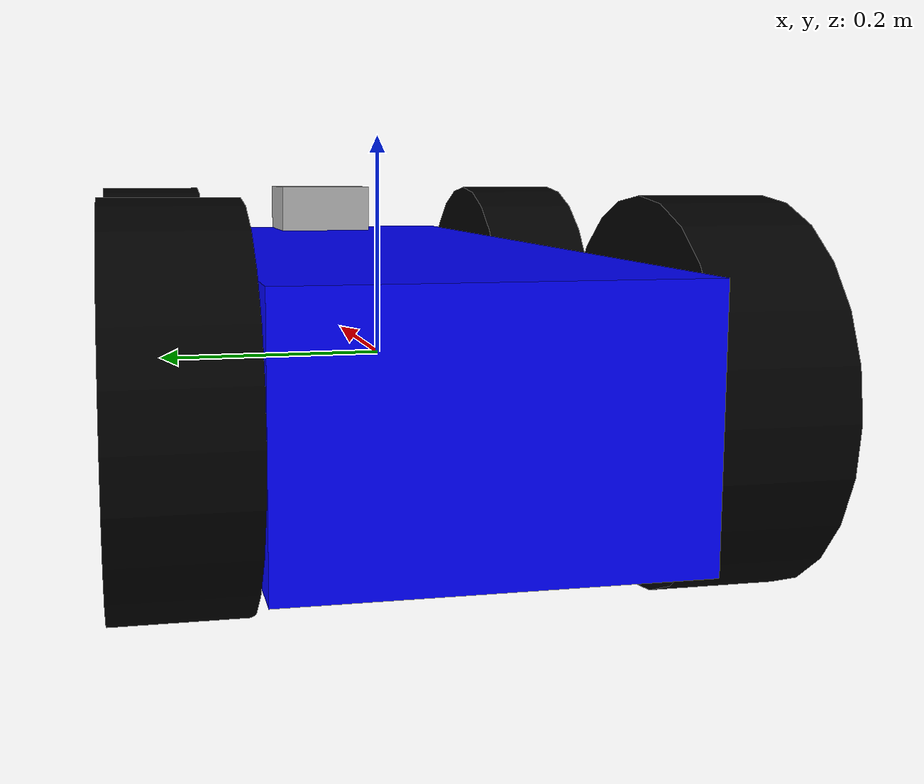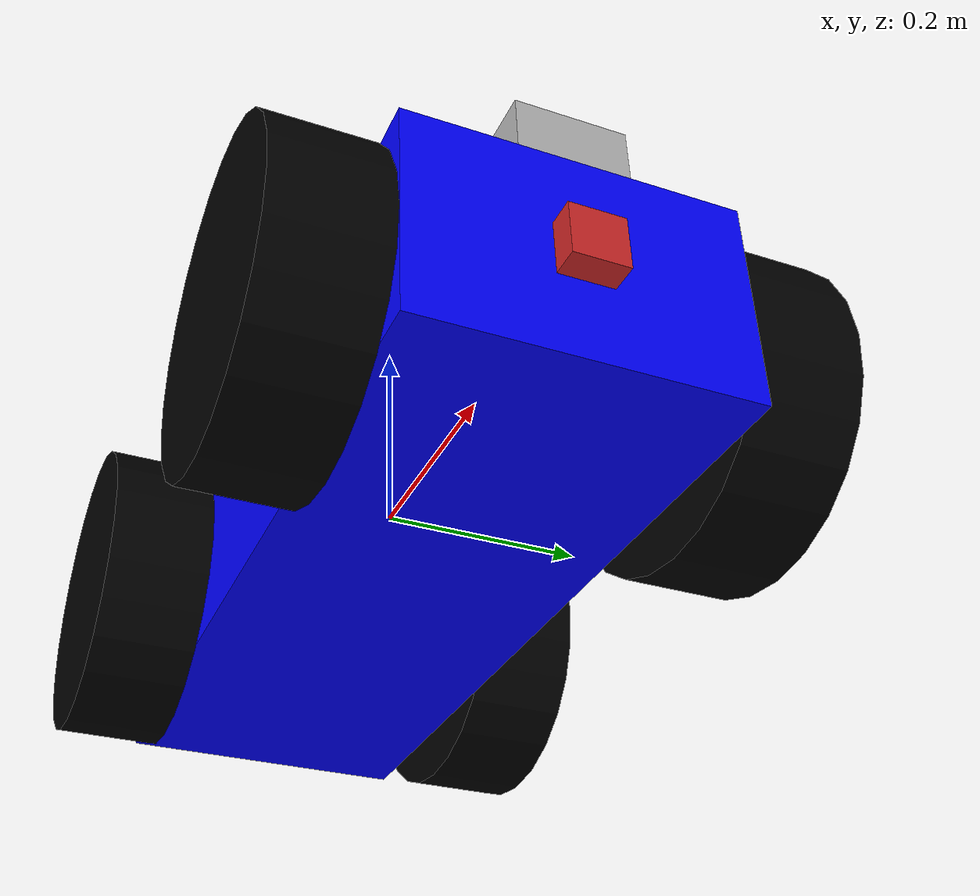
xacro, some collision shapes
<?xml version='1.0'?>

<robot name="my_robot" xmlns:xacro="http://www.ros.org/wiki/xacro">

<xacro:include filename="$(find my_robot)/urdf/my_robot.gazebo" />
<xacro:include filename="$(find my_robot)/urdf/color.gazebo" />
  <material name="blue">
        <color rgba="0 0 1 1"/>
  </material>

  <link name="robot_footprint"></link>

  <joint name="robot_footprint_joint" type="fixed">
    <origin xyz="0 0 0" rpy="0 0 0" />
    <parent link="robot_footprint"/>
    <child link="chassis" />
  </joint>

  <link name='chassis'>
    <pose>0 0 0.1 0 0 0</pose>

    <inertial>
      <mass value="5.0"/>
      <origin xyz="0.0 0 0" rpy=" 0 0 0"/>
      <inertia
          ixx="0.1" ixy="0" ixz="0"
          iyy="0.1" iyz="0"
          izz="0.1"
      />
    </inertial>

    <collision name='collision'>
      <origin xyz="0 0 0" rpy=" 0 0 0"/>
      <geometry>
        <box size="0.8 0.3 .2"/>
      </geometry>
    </collision>

    <visual name='chassis_visual'>
      <origin xyz="0 0 0" rpy=" 0 0 0"/>
      <geometry>
        <box size="0.8 0.3 .2"/>
      </geometry>
      <material name="blue"/>
    </visual>
  </link>

  <link name="left_wheel_front">

	<inertial>
	      <mass value="1.0"/>
	      <origin xyz="0 0 0" rpy=" 1.5707 0 0"/>
      	      <inertia ixx=".1" ixy="0" ixz="0" iyy=".1" iyz="0" izz=".1"/>
    	</inertial>

  	<visual name="left_wheel_front_visual">
		<origin xyz="0 0 0" rpy=" 1.5707 0 0"/>
		<geometry>
			<cylinder length="0.1" radius="0.15"/>
		</geometry>
      		<material name="">
        		<color rgba="0 0 0 1"/>
      		</material>
	</visual>

  	<collision name="left_wheel_front_collision">
		<origin xyz="0 0 0" rpy=" 1.5707 0 0"/>
		<geometry>
			<cylinder length="0.1" radius="0.15"/>
		</geometry>
	</collision>

  </link>

  <link name="right_wheel_front">

	<inertial>
	      <mass value="1.0"/>
	      <origin xyz="0 0 0" rpy=" 1.5707 0 0"/>
      		<inertia ixx="0.1" ixy="0" ixz="0" iyy="0.1" iyz="0" izz="0.1"/>
    	</inertial>
  	<visual name="right_wheel_front_visual">
		<origin xyz="0 0 0" rpy=" 1.5707 0 0"/>
		<geometry>
			<cylinder length="0.1" radius="0.15"/>
		</geometry>
      		<material name="">
        		<color rgba="0 0 0 1"/>
      		</material>
	</visual>
  	<collision name="right_wheel_front_collision">
		<origin xyz="0 0 0" rpy=" 1.5707 0 0"/>
		<geometry>
			<cylinder length="0.1" radius="0.15"/>
		</geometry>
	</collision>
  </link>

  <link name="left_wheel_back">

	<inertial>
	      <mass value="1.0"/>
	      <origin xyz="0 0 0" rpy=" 1.5707 0 0"/>
      	      <inertia ixx=".1" ixy="0" ixz="0" iyy=".1" iyz="0" izz=".1"/>
    	</inertial>

  	<visual name="left_wheel_back_visual">
		<origin xyz="0 0 0" rpy=" 1.5707 0 0"/>
		<geometry>
			<cylinder length="0.1" radius="0.15"/>
		</geometry>
      		<material name="">
        		<color rgba="0 0 0 1"/>
      		</material>
	</visual>

  	<collision name="left_wheel_back_collision">
		<origin xyz="0 0 0" rpy=" 1.5707 0 0"/>
		<geometry>
			<cylinder length="0.1" radius="0.15"/>
		</geometry>
	</collision>

  </link>

  <link name="right_wheel_back">

	<inertial>
	      <mass value="1.0"/>
	      <origin xyz="0 0 0" rpy=" 1.5707 0 0"/>
      		<inertia ixx="0.1" ixy="0" ixz="0" iyy="0.1" iyz="0" izz="0.1"/>
    	</inertial>
  	<visual name="right_wheel_back_visual">
		<origin xyz="0 0 0" rpy=" 1.5707 0 0"/>
		<geometry>
			<cylinder length="0.1" radius="0.15"/>
		</geometry>
      		<material name="">
        		<color rgba="0 0 0 1"/>
      		</material>
	</visual>
  	<collision name="right_wheel_back_collision">
		<origin xyz="0 0 0" rpy=" 1.5707 0 0"/>
		<geometry>
			<cylinder length="0.1" radius="0.15"/>
		</geometry>
	</collision>
  </link>

  <joint type="continuous" name="left_wheel_front_hinge">
    <origin xyz="0.25 0.2 0" rpy="0 0 0"/>
    <child link="left_wheel_front"/>
    <parent link="chassis"/>
    <axis xyz="0 1 0" rpy="0 0 0"/>
    <limit effort="10000" velocity="1000"/>
    <dynamics damping="1.0" friction="1.0"/>
  </joint>

  <joint type="continuous" name="right_wheel_front_hinge">
    <origin xyz="0.25 -0.2 0" rpy="0 0 0"/>
    <child link="right_wheel_front"/>
    <parent link="chassis"/>
    <axis xyz="0 1 0" rpy="0 0 0"/>
    <limit effort="10000" velocity="1000"/>
    <dynamics damping="1.0" friction="1.0"/>
  </joint>

  <joint type="continuous" name="left_wheel_back_hinge">
    <origin xyz="-0.25 0.2 0" rpy="0 0 0"/>
    <child link="left_wheel_back"/>
    <parent link="chassis"/>
    <axis xyz="0 1 0" rpy="0 0 0"/>
    <limit effort="10000" velocity="1000"/>
    <dynamics damping="1.0" friction="1.0"/>
  </joint>

  <joint type="continuous" name="right_wheel_back_hinge">
    <origin xyz="-0.25 -0.2 0" rpy="0 0 0"/>
    <child link="right_wheel_back"/>
    <parent link="chassis"/>
    <axis xyz="0 1 0" rpy="0 0 0"/>
    <limit effort="10000" velocity="1000"/>
    <dynamics damping="1.0" friction="1.0"/>
  </joint>

  <link name="camera">

	<inertial>
	      <mass value="0.1"/>
	      <origin xyz="0 0 0" rpy="0 0 0"/>
		<box_inertia m=".1" x="0.05" y="0.05" z=""/>
      		<inertia ixx="1e-6" ixy="0" ixz="0" iyy="1e-6" iyz="0" izz="1e-6"/>
    	</inertial>
  	<visual name="camera_visual">
		<origin xyz="0 0 0" rpy="0 0 0"/>
		<geometry>
			<box size="0.05 0.05 0.05"/>
		</geometry>
	</visual>
  	<collision name="camera_collision">
		<origin xyz="0 0 0" rpy="0 0 0"/>
		<geometry>
			<box size="0.05 0.05 0.05"/>
		</geometry>
	</collision>
  </link>

  <joint type="fixed" name="camera_joint">
    <origin xyz="0.4 0 0" rpy="0 0 0"/>
    <child link="camera"/>
    <parent link="chassis"/>
    <axis xyz="0 1 0" rpy="0 0 0"/>
  </joint>

  <link name="hokuyo">
	<inertial>
	      <mass value="1e-5"/>
	      <origin xyz="0 0 0" rpy="0 0 0"/>
      		<inertia ixx="1e-6" ixy="0" ixz="0" iyy="1e-6" iyz="0" izz="1e-6"/>
    	</inertial>
  	<visual name="hokuyo_visual">
		<origin xyz="0 0 0" rpy="0 0 0"/>
		<geometry>
			<!--box size=".2 .2 .2"/-->
			<mesh filename="package://my_robot/meshes/hokuyo.dae"/>
		</geometry>
	</visual>
  	<collision name="hokuyo_collision">
		<origin xyz="0 0 0" rpy="0 0 0"/>
		<geometry>
			<box size=".1 .1 .1"/>
		</geometry>
	</collision>
  </link>

  <joint type="fixed" name="hokuyo_joint">
    <origin xyz="0.35 0 0.1" rpy="0 0 0"/>
    <child link="hokuyo"/>
    <parent link="chassis"/>
    <axis xyz="0 1 0" rpy="0 0 0"/>
  </joint>

</robot>
